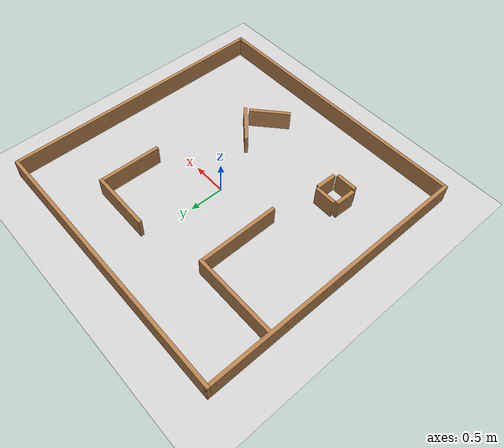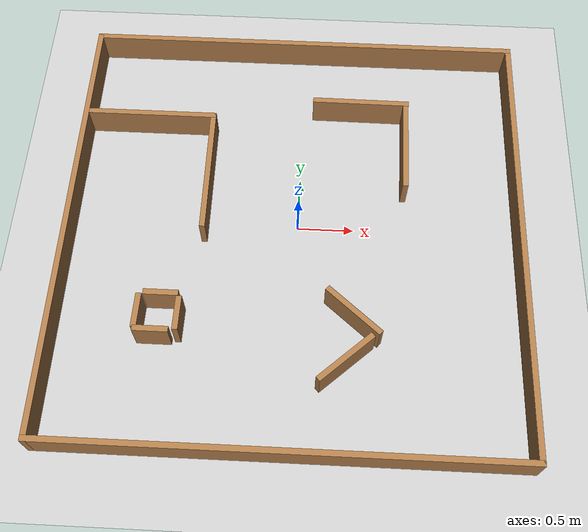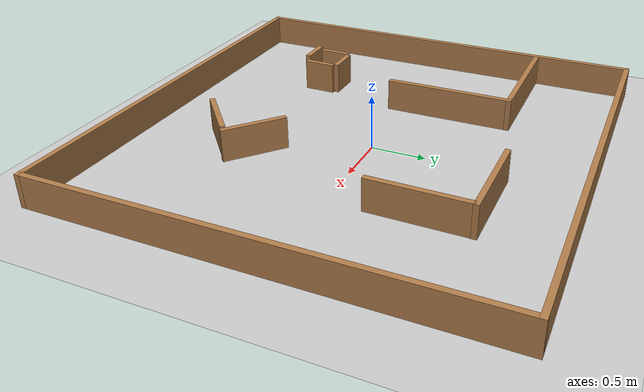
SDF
<sdf version="1.7">
 <world name="default">
  <light name="sun" type="directional">
   <pose>0 0 10 0 -0 0</pose>
   <diffuse>0.8 0.8 0.8 1</diffuse>
   <specular>0.2 0.2 0.2 1</specular>
   <attenuation>
    <range>1000</range>
    <constant>0.9</constant>
    <linear>0.01</linear>
    <quadratic>0.001</quadratic>
   </attenuation>
   <direction>-0.5 0.1 -0.9</direction>
   <spot><inner_angle>0</inner_angle><outer_angle>0</outer_angle><falloff>0</falloff></spot>
  </light>
  <model name="ground_plane">
   <static>1</static>
   <link name="link">
    <collision name="collision">
     <geometry><plane><normal>0 0 1</normal><size>100 100</size></plane></geometry>
     <surface>
      <contact><collide_bitmask>65535</collide_bitmask></contact>
      <friction><ode><mu>100</mu><mu2>50</mu2></ode></friction>
     </surface>
    </collision>
    <visual name="visual">
     <cast_shadows>0</cast_shadows>
     <geometry><plane><normal>0 0 1</normal><size>100 100</size></plane></geometry>
     <material>
      <script><uri>file://media/materials/scripts/gazebo.material</uri><name>Gazebo/Grey</name></script>
     </material>
    </visual>
   </link>
  </model>
  <gravity>0 0 -9.8</gravity>
  <magnetic_field>6e-06 2.3e-05 -4.2e-05</magnetic_field>
  <atmosphere type="adiabatic"/>
  <physics type="ode">
   <max_step_size>0.001</max_step_size>
   <real_time_factor>1</real_time_factor>
   <real_time_update_rate>1000</real_time_update_rate>
  </physics>
  <scene><ambient>0.4 0.4 0.4 1</ambient><background>0.7 0.7 0.7 1</background><shadows>1</shadows></scene>
  <audio><device>default</device></audio>
  <spherical_coordinates>
   <surface_model>EARTH_WGS84</surface_model>
   <latitude_deg>0</latitude_deg>
   <longitude_deg>0</longitude_deg>
   <elevation>0</elevation>
   <heading_deg>0</heading_deg>
  </spherical_coordinates>
  <model name="square4m">
   <pose>-0.036934 -0.08842 0 0 -0 0</pose>
   <link name="Wall_10">
    <collision name="Wall_10_Collision">
     <geometry><box><size>4.05 0.05 0.3</size></box></geometry>
     <pose>0 0 0.15 0 -0 0</pose>
    </collision>
    <visual name="Wall_10_Visual">
     <pose>0 0 0.15 0 -0 0</pose>
     <geometry><box><size>4.05 0.05 0.3</size></box></geometry>
     <material>
      <script><uri>file://media/materials/scripts/gazebo.material</uri><name>Gazebo/Wood</name></script>
      <ambient>1 1 1 1</ambient>
     </material>
     <meta><layer>0</layer></meta>
    </visual>
    <pose>0 2 0 0 -0 0</pose>
   </link>
   <link name="Wall_12">
    <collision name="Wall_12_Collision">
     <geometry><box><size>4.05 0.05 0.3</size></box></geometry>
     <pose>0 0 0.15 0 -0 0</pose>
    </collision>
    <visual name="Wall_12_Visual">
     <pose>0 0 0.15 0 -0 0</pose>
     <geometry><box><size>4.05 0.05 0.3</size></box></geometry>
     <material>
      <script><uri>file://media/materials/scripts/gazebo.material</uri><name>Gazebo/Wood</name></script>
      <ambient>1 1 1 1</ambient>
     </material>
     <meta><layer>0</layer></meta>
    </visual>
    <pose>2 0 0 0 -0 -1.5708</pose>
   </link>
   <link name="Wall_14">
    <collision name="Wall_14_Collision">
     <geometry><box><size>4.05 0.05 0.3</size></box></geometry>
     <pose>0 0 0.15 0 -0 0</pose>
    </collision>
    <visual name="Wall_14_Visual">
     <pose>0 0 0.15 0 -0 0</pose>
     <geometry><box><size>4.05 0.05 0.3</size></box></geometry>
     <material>
      <script><uri>file://media/materials/scripts/gazebo.material</uri><name>Gazebo/Wood</name></script>
      <ambient>1 1 1 1</ambient>
     </material>
     <meta><layer>0</layer></meta>
    </visual>
    <pose>0 -2 0 0 -0 3.14159</pose>
   </link>
   <link name="Wall_8">
    <collision name="Wall_8_Collision">
     <geometry><box><size>4.05 0.05 0.3</size></box></geometry>
     <pose>0 0 0.15 0 -0 0</pose>
    </collision>
    <visual name="Wall_8_Visual">
     <pose>0 0 0.15 0 -0 0</pose>
     <geometry><box><size>4.05 0.05 0.3</size></box></geometry>
     <material>
      <script><uri>file://media/materials/scripts/gazebo.material</uri><name>Gazebo/Wood</name></script>
      <ambient>1 1 1 1</ambient>
     </material>
     <meta><layer>0</layer></meta>
    </visual>
    <pose>-2 0 0 0 -0 -1.5708</pose>
   </link>
   <static>1</static>
  </model>
  <model name="wall120cm">
   <pose>-1.4141 1.01013 0 0 -0 0</pose>
   <link name="Wall_11">
    <collision name="Wall_11_Collision">
     <geometry><box><size>1.2 0.05 0.3</size></box></geometry>
     <pose>0 0 0.15 0 -0 0</pose>
    </collision>
    <visual name="Wall_11_Visual">
     <pose>0 0 0.15 0 -0 0</pose>
     <geometry><box><size>1.2 0.05 0.3</size></box></geometry>
     <material>
      <script><uri>file://media/materials/scripts/gazebo.material</uri><name>Gazebo/Wood</name></script>
      <ambient>1 1 1 1</ambient>
     </material>
     <meta><layer>0</layer></meta>
    </visual>
   </link>
   <static>1</static>
  </model>
  <model name="wall120cm_0">
   <pose>-0.837324 0.429573 0 0 0 -1.56671</pose>
   <link name="Wall_11">
    <collision name="Wall_11_Collision">
     <geometry><box><size>1.2 0.05 0.3</size></box></geometry>
     <pose>0 0 0.15 0 -0 0</pose>
    </collision>
    <visual name="Wall_11_Visual">
     <pose>0 0 0.15 0 -0 0</pose>
     <geometry><box><size>1.2 0.05 0.3</size></box></geometry>
     <material>
      <script><uri>file://media/materials/scripts/gazebo.material</uri><name>Gazebo/Wood</name></script>
      <ambient>1 1 1 1</ambient>
     </material>
     <meta><layer>0</layer></meta>
    </visual>
   </link>
   <static>1</static>
  </model>
  <model name="wall90cm">
   <pose>0.536693 1.2303 0 0 -0 3.13405</pose>
   <link name="Wall_6">
    <collision name="Wall_6_Collision">
     <geometry><box><size>0.9 0.05 0.3</size></box></geometry>
     <pose>0 0 0.15 0 -0 0</pose>
    </collision>
    <visual name="Wall_6_Visual">
     <pose>0 0 0.15 0 -0 0</pose>
     <geometry><box><size>0.9 0.05 0.3</size></box></geometry>
     <material>
      <script><uri>file://media/materials/scripts/gazebo.material</uri><name>Gazebo/Wood</name></script>
      <ambient>1 1 1 1</ambient>
     </material>
     <meta><layer>0</layer></meta>
    </visual>
   </link>
   <static>1</static>
  </model>
  <model name="wall90cm_0">
   <pose>0.953726 0.777383 0 0 0 -1.582</pose>
   <link name="Wall_6">
    <collision name="Wall_6_Collision">
     <geometry><box><size>0.9 0.05 0.3</size></box></geometry>
     <pose>0 0 0.15 0 -0 0</pose>
    </collision>
    <visual name="Wall_6_Visual">
     <pose>0 0 0.15 0 -0 0</pose>
     <geometry><box><size>0.9 0.05 0.3</size></box></geometry>
     <material>
      <script><uri>file://media/materials/scripts/gazebo.material</uri><name>Gazebo/Wood</name></script>
      <ambient>1 1 1 1</ambient>
     </material>
     <meta><layer>0</layer></meta>
    </visual>
   </link>
   <static>1</static>
  </model>
  <model name="wall30cm">
   <pose>-1.1192 -0.812375 0 0 -0 0</pose>
   <link name="Wall_0">
    <collision name="Wall_0_Collision">
     <geometry><box><size>0.3 0.05 0.3</size></box></geometry>
     <pose>0 0 0.15 0 -0 0</pose>
    </collision>
    <visual name="Wall_0_Visual">
     <pose>0 0 0.15 0 -0 0</pose>
     <geometry><box><size>0.3 0.05 0.3</size></box></geometry>
     <material>
      <script><uri>file://media/materials/scripts/gazebo.material</uri><name>Gazebo/Wood</name></script>
      <ambient>1 1 1 1</ambient>
     </material>
     <meta><layer>0</layer></meta>
    </visual>
   </link>
   <static>1</static>
  </model>
  <model name="wall30cm_0">
   <pose>-1.16192 -1.15294 0.032286 0 -0 0</pose>
   <link name="Wall_0">
    <collision name="Wall_0_Collision">
     <geometry><box><size>0.3 0.05 0.3</size></box></geometry>
     <pose>0 0 0.15 0 -0 0</pose>
    </collision>
    <visual name="Wall_0_Visual">
     <pose>0 0 0.15 0 -0 0</pose>
     <geometry><box><size>0.3 0.05 0.3</size></box></geometry>
     <material>
      <script><uri>file://media/materials/scripts/gazebo.material</uri><name>Gazebo/Wood</name></script>
      <ambient>1 1 1 1</ambient>
     </material>
     <meta><layer>0</layer></meta>
    </visual>
   </link>
   <static>1</static>
  </model>
  <model name="wall30cm_1">
   <pose>-0.963061 -0.990316 0 0 -0 1.55277</pose>
   <link name="Wall_0">
    <collision name="Wall_0_Collision">
     <geometry><box><size>0.3 0.05 0.3</size></box></geometry>
     <pose>0 0 0.15 0 -0 0</pose>
    </collision>
    <visual name="Wall_0_Visual">
     <pose>0 0 0.15 0 -0 0</pose>
     <geometry><box><size>0.3 0.05 0.3</size></box></geometry>
     <material>
      <script><uri>file://media/materials/scripts/gazebo.material</uri><name>Gazebo/Wood</name></script>
      <ambient>1 1 1 1</ambient>
     </material>
     <meta><layer>0</layer></meta>
    </visual>
   </link>
   <static>1</static>
  </model>
  <model name="wall30cm_2">
   <pose>-1.3057 -0.980119 0 0 -0 1.54286</pose>
   <link name="Wall_0">
    <collision name="Wall_0_Collision">
     <geometry><box><size>0.3 0.05 0.3</size></box></geometry>
     <pose>0 0 0.15 0 -0 0</pose>
    </collision>
    <visual name="Wall_0_Visual">
     <pose>0 0 0.15 0 -0 0</pose>
     <geometry><box><size>0.3 0.05 0.3</size></box></geometry>
     <material>
      <script><uri>file://media/materials/scripts/gazebo.material</uri><name>Gazebo/Wood</name></script>
      <ambient>1 1 1 1</ambient>
     </material>
     <meta><layer>0</layer></meta>
    </visual>
   </link>
   <static>1</static>
  </model>
  <model name="wall60cm">
   <pose>0.505502 -0.895234 0 0 0 -0.703627</pose>
   <link name="Wall_4">
    <collision name="Wall_4_Collision">
     <geometry><box><size>0.6 0.05 0.3</size></box></geometry>
     <pose>0 0 0.15 0 -0 0</pose>
    </collision>
    <visual name="Wall_4_Visual">
     <pose>0 0 0.15 0 -0 0</pose>
     <geometry><box><size>0.6 0.05 0.3</size></box></geometry>
     <material>
      <script><uri>file://media/materials/scripts/gazebo.material</uri><name>Gazebo/Wood</name></script>
      <ambient>1 1 1 1</ambient>
     </material>
     <meta><layer>0</layer></meta>
    </visual>
   </link>
   <static>1</static>
  </model>
  <model name="wall60cm_0">
   <pose>0.447655 -1.30563 0 0 -0 0.733691</pose>
   <link name="Wall_4">
    <collision name="Wall_4_Collision">
     <geometry><box><size>0.6 0.05 0.3</size></box></geometry>
     <pose>0 0 0.15 0 -0 0</pose>
    </collision>
    <visual name="Wall_4_Visual">
     <pose>0 0 0.15 0 -0 0</pose>
     <geometry><box><size>0.6 0.05 0.3</size></box></geometry>
     <material>
      <script><uri>file://media/materials/scripts/gazebo.material</uri><name>Gazebo/Wood</name></script>
      <ambient>1 1 1 1</ambient>
     </material>
     <meta><layer>0</layer></meta>
    </visual>
   </link>
   <static>1</static>
  </model>
 </world>
</sdf>
